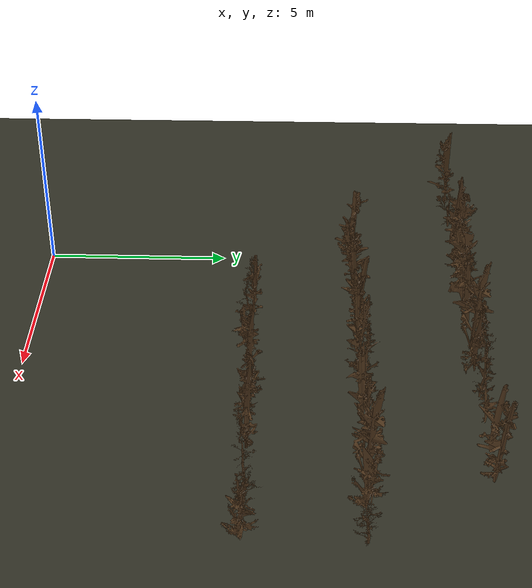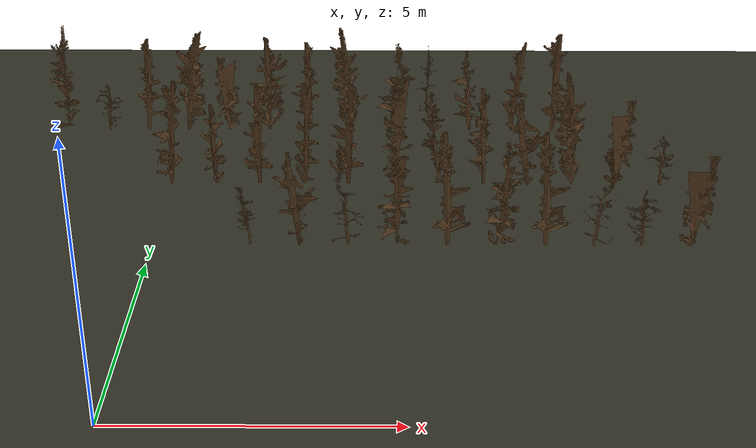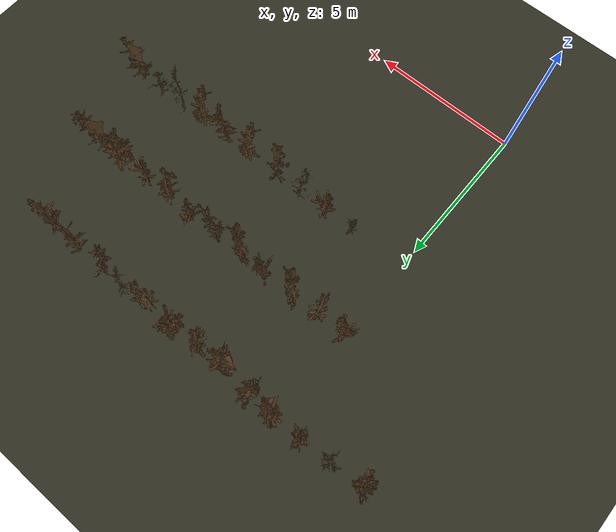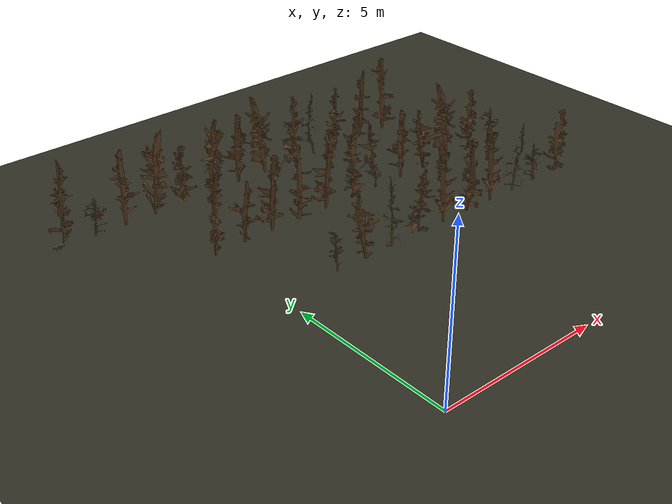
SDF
<sdf version="1.9">
 <world name="orchard_dormant_world">
  <model name="ground_plane">
   <static>true</static>
   <link name="link">
    <collision name="collision">
     <geometry><plane><normal>0 0 1</normal><size>500 500</size></plane></geometry>
    </collision>
    <visual name="visual">
     <geometry><plane><normal>0 0 1</normal><size>500 500</size></plane></geometry>
     <material><ambient>0.2 0.2 0.15 1</ambient><diffuse>0.2 0.2 0.15 1</diffuse></material>
    </visual>
   </link>
  </model>
  <model name="tree164">
   <static>true</static>
   <pose>9.000 11.700 -0.1 0 0 3.719</pose>
   <link name="link">
    <collision name="collision">
     <geometry>
      <mesh>
       <uri>file:///home/administrator/ros2/orchard_navigation_rl_ws/src/orchard_worlds/models/orchard_model/tree6_collision.stl</uri>
      </mesh>
     </geometry>
    </collision>
    <visual name="visual">
     <geometry>
      <mesh>
       <uri>file:///home/administrator/ros2/orchard_navigation_rl_ws/src/orchard_worlds/models/orchard_model/tree6.stl</uri>
      </mesh>
     </geometry>
     <material><ambient>0.3 0.2 0.1 1</ambient><diffuse>0.3 0.2 0.1 1</diffuse></material>
    </visual>
   </link>
  </model>
  <model name="tree165">
   <static>true</static>
   <pose>8.000 11.700 -0.1 0 0 2.765</pose>
   <link name="link">
    <collision name="collision">
     <geometry>
      <mesh>
       <uri>file:///home/administrator/ros2/orchard_navigation_rl_ws/src/orchard_worlds/models/orchard_model/tree13_collision.stl</uri>
      </mesh>
     </geometry>
    </collision>
    <visual name="visual">
     <geometry>
      <mesh>
       <uri>file:///home/administrator/ros2/orchard_navigation_rl_ws/src/orchard_worlds/models/orchard_model/tree13.stl</uri>
      </mesh>
     </geometry>
     <material><ambient>0.3 0.2 0.1 1</ambient><diffuse>0.3 0.2 0.1 1</diffuse></material>
    </visual>
   </link>
  </model>
  <model name="tree166">
   <static>true</static>
   <pose>7.000 11.700 -0.1 0 0 6.027</pose>
   <link name="link">
    <collision name="collision">
     <geometry>
      <mesh>
       <uri>file:///home/administrator/ros2/orchard_navigation_rl_ws/src/orchard_worlds/models/orchard_model/tree2_collision.stl</uri>
      </mesh>
     </geometry>
    </collision>
    <visual name="visual">
     <geometry>
      <mesh>
       <uri>file:///home/administrator/ros2/orchard_navigation_rl_ws/src/orchard_worlds/models/orchard_model/tree2.stl</uri>
      </mesh>
     </geometry>
     <material><ambient>0.3 0.2 0.1 1</ambient><diffuse>0.3 0.2 0.1 1</diffuse></material>
    </visual>
   </link>
  </model>
  <model name="tree167">
   <static>true</static>
   <pose>6.000 11.700 -0.1 0 0 0.107</pose>
   <link name="link">
    <collision name="collision">
     <geometry>
      <mesh>
       <uri>file:///home/administrator/ros2/orchard_navigation_rl_ws/src/orchard_worlds/models/orchard_model/tree16_collision.stl</uri>
      </mesh>
     </geometry>
    </collision>
    <visual name="visual">
     <geometry>
      <mesh>
       <uri>file:///home/administrator/ros2/orchard_navigation_rl_ws/src/orchard_worlds/models/orchard_model/tree16.stl</uri>
      </mesh>
     </geometry>
     <material><ambient>0.3 0.2 0.1 1</ambient><diffuse>0.3 0.2 0.1 1</diffuse></material>
    </visual>
   </link>
  </model>
  <model name="tree168">
   <static>true</static>
   <pose>5.000 11.700 -0.1 0 0 2.189</pose>
   <link name="link">
    <collision name="collision">
     <geometry>
      <mesh>
       <uri>file:///home/administrator/ros2/orchard_navigation_rl_ws/src/orchard_worlds/models/orchard_model/tree10_collision.stl</uri>
      </mesh>
     </geometry>
    </collision>
    <visual name="visual">
     <geometry>
      <mesh>
       <uri>file:///home/administrator/ros2/orchard_navigation_rl_ws/src/orchard_worlds/models/orchard_model/tree10.stl</uri>
      </mesh>
     </geometry>
     <material><ambient>0.3 0.2 0.1 1</ambient><diffuse>0.3 0.2 0.1 1</diffuse></material>
    </visual>
   </link>
  </model>
  <model name="tree169">
   <static>true</static>
   <pose>4.000 11.700 -0.1 0 0 4.984</pose>
   <link name="link">
    <collision name="collision">
     <geometry>
      <mesh>
       <uri>file:///home/administrator/ros2/orchard_navigation_rl_ws/src/orchard_worlds/models/orchard_model/tree7_collision.stl</uri>
      </mesh>
     </geometry>
    </collision>
    <visual name="visual">
     <geometry>
      <mesh>
       <uri>file:///home/administrator/ros2/orchard_navigation_rl_ws/src/orchard_worlds/models/orchard_model/tree7.stl</uri>
      </mesh>
     </geometry>
     <material><ambient>0.3 0.2 0.1 1</ambient><diffuse>0.3 0.2 0.1 1</diffuse></material>
    </visual>
   </link>
  </model>
  <model name="tree170">
   <static>true</static>
   <pose>3.000 11.700 -0.1 0 0 0.994</pose>
   <link name="link">
    <collision name="collision">
     <geometry>
      <mesh>
       <uri>file:///home/administrator/ros2/orchard_navigation_rl_ws/src/orchard_worlds/models/orchard_model/tree15_collision.stl</uri>
      </mesh>
     </geometry>
    </collision>
    <visual name="visual">
     <geometry>
      <mesh>
       <uri>file:///home/administrator/ros2/orchard_navigation_rl_ws/src/orchard_worlds/models/orchard_model/tree15.stl</uri>
      </mesh>
     </geometry>
     <material><ambient>0.3 0.2 0.1 1</ambient><diffuse>0.3 0.2 0.1 1</diffuse></material>
    </visual>
   </link>
  </model>
  <model name="tree171">
   <static>true</static>
   <pose>2.000 11.700 -0.1 0 0 1.065</pose>
   <link name="link">
    <collision name="collision">
     <geometry>
      <mesh>
       <uri>file:///home/administrator/ros2/orchard_navigation_rl_ws/src/orchard_worlds/models/orchard_model/tree7_collision.stl</uri>
      </mesh>
     </geometry>
    </collision>
    <visual name="visual">
     <geometry>
      <mesh>
       <uri>file:///home/administrator/ros2/orchard_navigation_rl_ws/src/orchard_worlds/models/orchard_model/tree7.stl</uri>
      </mesh>
     </geometry>
     <material><ambient>0.3 0.2 0.1 1</ambient><diffuse>0.3 0.2 0.1 1</diffuse></material>
    </visual>
   </link>
  </model>
  <model name="tree172">
   <static>true</static>
   <pose>1.000 11.700 -0.1 0 0 0.466</pose>
   <link name="link">
    <collision name="collision">
     <geometry>
      <mesh>
       <uri>file:///home/administrator/ros2/orchard_navigation_rl_ws/src/orchard_worlds/models/orchard_model/tree11_collision.stl</uri>
      </mesh>
     </geometry>
    </collision>
    <visual name="visual">
     <geometry>
      <mesh>
       <uri>file:///home/administrator/ros2/orchard_navigation_rl_ws/src/orchard_worlds/models/orchard_model/tree11.stl</uri>
      </mesh>
     </geometry>
     <material><ambient>0.3 0.2 0.1 1</ambient><diffuse>0.3 0.2 0.1 1</diffuse></material>
    </visual>
   </link>
  </model>
  <model name="tree173">
   <static>true</static>
   <pose>0.000 11.700 -0.1 0 0 2.783</pose>
   <link name="link">
    <collision name="collision">
     <geometry>
      <mesh>
       <uri>file:///home/administrator/ros2/orchard_navigation_rl_ws/src/orchard_worlds/models/orchard_model/tree7_collision.stl</uri>
      </mesh>
     </geometry>
    </collision>
    <visual name="visual">
     <geometry>
      <mesh>
       <uri>file:///home/administrator/ros2/orchard_navigation_rl_ws/src/orchard_worlds/models/orchard_model/tree7.stl</uri>
      </mesh>
     </geometry>
     <material><ambient>0.3 0.2 0.1 1</ambient><diffuse>0.3 0.2 0.1 1</diffuse></material>
    </visual>
   </link>
  </model>
  <model name="tree174">
   <static>true</static>
   <pose>-1.000 11.700 -0.1 0 0 4.013</pose>
   <link name="link">
    <collision name="collision">
     <geometry>
      <mesh>
       <uri>file:///home/administrator/ros2/orchard_navigation_rl_ws/src/orchard_worlds/models/orchard_model/tree15_collision.stl</uri>
      </mesh>
     </geometry>
    </collision>
    <visual name="visual">
     <geometry>
      <mesh>
       <uri>file:///home/administrator/ros2/orchard_navigation_rl_ws/src/orchard_worlds/models/orchard_model/tree15.stl</uri>
      </mesh>
     </geometry>
     <material><ambient>0.3 0.2 0.1 1</ambient><diffuse>0.3 0.2 0.1 1</diffuse></material>
    </visual>
   </link>
  </model>
  <model name="tree175">
   <static>true</static>
   <pose>-2.000 11.700 -0.1 0 0 3.729</pose>
   <link name="link">
    <collision name="collision">
     <geometry>
      <mesh>
       <uri>file:///home/administrator/ros2/orchard_navigation_rl_ws/src/orchard_worlds/models/orchard_model/tree14_collision.stl</uri>
      </mesh>
     </geometry>
    </collision>
    <visual name="visual">
     <geometry>
      <mesh>
       <uri>file:///home/administrator/ros2/orchard_navigation_rl_ws/src/orchard_worlds/models/orchard_model/tree14.stl</uri>
      </mesh>
     </geometry>
     <material><ambient>0.3 0.2 0.1 1</ambient><diffuse>0.3 0.2 0.1 1</diffuse></material>
    </visual>
   </link>
  </model>
  <model name="tree176">
   <static>true</static>
   <pose>-3.000 11.700 -0.1 0 0 0.740</pose>
   <link name="link">
    <collision name="collision">
     <geometry>
      <mesh>
       <uri>file:///home/administrator/ros2/orchard_navigation_rl_ws/src/orchard_worlds/models/orchard_model/tree3_collision.stl</uri>
      </mesh>
     </geometry>
    </collision>
    <visual name="visual">
     <geometry>
      <mesh>
       <uri>file:///home/administrator/ros2/orchard_navigation_rl_ws/src/orchard_worlds/models/orchard_model/tree3.stl</uri>
      </mesh>
     </geometry>
     <material><ambient>0.3 0.2 0.1 1</ambient><diffuse>0.3 0.2 0.1 1</diffuse></material>
    </visual>
   </link>
  </model>
  <model name="tree196">
   <static>true</static>
   <pose>11.000 8.700 -0.1 0 0 2.501</pose>
   <link name="link">
    <collision name="collision">
     <geometry>
      <mesh>
       <uri>file:///home/administrator/ros2/orchard_navigation_rl_ws/src/orchard_worlds/models/orchard_model/tree14_collision.stl</uri>
      </mesh>
     </geometry>
    </collision>
    <visual name="visual">
     <geometry>
      <mesh>
       <uri>file:///home/administrator/ros2/orchard_navigation_rl_ws/src/orchard_worlds/models/orchard_model/tree14.stl</uri>
      </mesh>
     </geometry>
     <material><ambient>0.3 0.2 0.1 1</ambient><diffuse>0.3 0.2 0.1 1</diffuse></material>
    </visual>
   </link>
  </model>
  <model name="tree197">
   <static>true</static>
   <pose>10.000 8.700 -0.1 0 0 3.217</pose>
   <link name="link">
    <collision name="collision">
     <geometry>
      <mesh>
       <uri>file:///home/administrator/ros2/orchard_navigation_rl_ws/src/orchard_worlds/models/orchard_model/tree11_collision.stl</uri>
      </mesh>
     </geometry>
    </collision>
    <visual name="visual">
     <geometry>
      <mesh>
       <uri>file:///home/administrator/ros2/orchard_navigation_rl_ws/src/orchard_worlds/models/orchard_model/tree11.stl</uri>
      </mesh>
     </geometry>
     <material><ambient>0.3 0.2 0.1 1</ambient><diffuse>0.3 0.2 0.1 1</diffuse></material>
    </visual>
   </link>
  </model>
  <model name="tree198">
   <static>true</static>
   <pose>9.000 8.700 -0.1 0 0 4.878</pose>
   <link name="link">
    <collision name="collision">
     <geometry>
      <mesh>
       <uri>file:///home/administrator/ros2/orchard_navigation_rl_ws/src/orchard_worlds/models/orchard_model/tree7_collision.stl</uri>
      </mesh>
     </geometry>
    </collision>
    <visual name="visual">
     <geometry>
      <mesh>
       <uri>file:///home/administrator/ros2/orchard_navigation_rl_ws/src/orchard_worlds/models/orchard_model/tree7.stl</uri>
      </mesh>
     </geometry>
     <material><ambient>0.3 0.2 0.1 1</ambient><diffuse>0.3 0.2 0.1 1</diffuse></material>
    </visual>
   </link>
  </model>
  <model name="tree199">
   <static>true</static>
   <pose>8.000 8.700 -0.1 0 0 5.051</pose>
   <link name="link">
    <collision name="collision">
     <geometry>
      <mesh>
       <uri>file:///home/administrator/ros2/orchard_navigation_rl_ws/src/orchard_worlds/models/orchard_model/tree8_collision.stl</uri>
      </mesh>
     </geometry>
    </collision>
    <visual name="visual">
     <geometry>
      <mesh>
       <uri>file:///home/administrator/ros2/orchard_navigation_rl_ws/src/orchard_worlds/models/orchard_model/tree8.stl</uri>
      </mesh>
     </geometry>
     <material><ambient>0.3 0.2 0.1 1</ambient><diffuse>0.3 0.2 0.1 1</diffuse></material>
    </visual>
   </link>
  </model>
  <model name="tree200">
   <static>true</static>
   <pose>7.000 8.700 -0.1 0 0 0.449</pose>
   <link name="link">
    <collision name="collision">
     <geometry>
      <mesh>
       <uri>file:///home/administrator/ros2/orchard_navigation_rl_ws/src/orchard_worlds/models/orchard_model/tree15_collision.stl</uri>
      </mesh>
     </geometry>
    </collision>
    <visual name="visual">
     <geometry>
      <mesh>
       <uri>file:///home/administrator/ros2/orchard_navigation_rl_ws/src/orchard_worlds/models/orchard_model/tree15.stl</uri>
      </mesh>
     </geometry>
     <material><ambient>0.3 0.2 0.1 1</ambient><diffuse>0.3 0.2 0.1 1</diffuse></material>
    </visual>
   </link>
  </model>
  <model name="tree201">
   <static>true</static>
   <pose>6.000 8.700 -0.1 0 0 4.723</pose>
   <link name="link">
    <collision name="collision">
     <geometry>
      <mesh>
       <uri>file:///home/administrator/ros2/orchard_navigation_rl_ws/src/orchard_worlds/models/orchard_model/tree2_collision.stl</uri>
      </mesh>
     </geometry>
    </collision>
    <visual name="visual">
     <geometry>
      <mesh>
       <uri>file:///home/administrator/ros2/orchard_navigation_rl_ws/src/orchard_worlds/models/orchard_model/tree2.stl</uri>
      </mesh>
     </geometry>
     <material><ambient>0.3 0.2 0.1 1</ambient><diffuse>0.3 0.2 0.1 1</diffuse></material>
    </visual>
   </link>
  </model>
  <model name="tree202">
   <static>true</static>
   <pose>5.000 8.700 -0.1 0 0 2.519</pose>
   <link name="link">
    <collision name="collision">
     <geometry>
      <mesh>
       <uri>file:///home/administrator/ros2/orchard_navigation_rl_ws/src/orchard_worlds/models/orchard_model/tree5_collision.stl</uri>
      </mesh>
     </geometry>
    </collision>
    <visual name="visual">
     <geometry>
      <mesh>
       <uri>file:///home/administrator/ros2/orchard_navigation_rl_ws/src/orchard_worlds/models/orchard_model/tree5.stl</uri>
      </mesh>
     </geometry>
     <material><ambient>0.3 0.2 0.1 1</ambient><diffuse>0.3 0.2 0.1 1</diffuse></material>
    </visual>
   </link>
  </model>
  <model name="tree203">
   <static>true</static>
   <pose>4.000 8.700 -0.1 0 0 1.296</pose>
   <link name="link">
    <collision name="collision">
     <geometry>
      <mesh>
       <uri>file:///home/administrator/ros2/orchard_navigation_rl_ws/src/orchard_worlds/models/orchard_model/tree6_collision.stl</uri>
      </mesh>
     </geometry>
    </collision>
    <visual name="visual">
     <geometry>
      <mesh>
       <uri>file:///home/administrator/ros2/orchard_navigation_rl_ws/src/orchard_worlds/models/orchard_model/tree6.stl</uri>
      </mesh>
     </geometry>
     <material><ambient>0.3 0.2 0.1 1</ambient><diffuse>0.3 0.2 0.1 1</diffuse></material>
    </visual>
   </link>
  </model>
  <model name="tree204">
   <static>true</static>
   <pose>3.000 8.700 -0.1 0 0 3.465</pose>
   <link name="link">
    <collision name="collision">
     <geometry>
      <mesh>
       <uri>file:///home/administrator/ros2/orchard_navigation_rl_ws/src/orchard_worlds/models/orchard_model/tree13_collision.stl</uri>
      </mesh>
     </geometry>
    </collision>
    <visual name="visual">
     <geometry>
      <mesh>
       <uri>file:///home/administrator/ros2/orchard_navigation_rl_ws/src/orchard_worlds/models/orchard_model/tree13.stl</uri>
      </mesh>
     </geometry>
     <material><ambient>0.3 0.2 0.1 1</ambient><diffuse>0.3 0.2 0.1 1</diffuse></material>
    </visual>
   </link>
  </model>
  <model name="tree205">
   <static>true</static>
   <pose>2.000 8.700 -0.1 0 0 0.932</pose>
   <link name="link">
    <collision name="collision">
     <geometry>
      <mesh>
       <uri>file:///home/administrator/ros2/orchard_navigation_rl_ws/src/orchard_worlds/models/orchard_model/tree6_collision.stl</uri>
      </mesh>
     </geometry>
    </collision>
    <visual name="visual">
     <geometry>
      <mesh>
       <uri>file:///home/administrator/ros2/orchard_navigation_rl_ws/src/orchard_worlds/models/orchard_model/tree6.stl</uri>
      </mesh>
     </geometry>
     <material><ambient>0.3 0.2 0.1 1</ambient><diffuse>0.3 0.2 0.1 1</diffuse></material>
    </visual>
   </link>
  </model>
  <model name="tree206">
   <static>true</static>
   <pose>1.000 8.700 -0.1 0 0 0.542</pose>
   <link name="link">
    <collision name="collision">
     <geometry>
      <mesh>
       <uri>file:///home/administrator/ros2/orchard_navigation_rl_ws/src/orchard_worlds/models/orchard_model/tree8_collision.stl</uri>
      </mesh>
     </geometry>
    </collision>
    <visual name="visual">
     <geometry>
      <mesh>
       <uri>file:///home/administrator/ros2/orchard_navigation_rl_ws/src/orchard_worlds/models/orchard_model/tree8.stl</uri>
      </mesh>
     </geometry>
     <material><ambient>0.3 0.2 0.1 1</ambient><diffuse>0.3 0.2 0.1 1</diffuse></material>
    </visual>
   </link>
  </model>
  <model name="tree207">
   <static>true</static>
   <pose>0.000 8.700 -0.1 0 0 2.624</pose>
   <link name="link">
    <collision name="collision">
     <geometry>
      <mesh>
       <uri>file:///home/administrator/ros2/orchard_navigation_rl_ws/src/orchard_worlds/models/orchard_model/tree6_collision.stl</uri>
      </mesh>
     </geometry>
    </collision>
    <visual name="visual">
     <geometry>
      <mesh>
       <uri>file:///home/administrator/ros2/orchard_navigation_rl_ws/src/orchard_worlds/models/orchard_model/tree6.stl</uri>
      </mesh>
     </geometry>
     <material><ambient>0.3 0.2 0.1 1</ambient><diffuse>0.3 0.2 0.1 1</diffuse></material>
    </visual>
   </link>
  </model>
  <model name="tree227">
   <static>true</static>
   <pose>11.000 5.900 -0.1 0 0 2.930</pose>
   <link name="link">
    <collision name="collision">
     <geometry>
      <mesh>
       <uri>file:///home/administrator/ros2/orchard_navigation_rl_ws/src/orchard_worlds/models/orchard_model/tree11_collision.stl</uri>
      </mesh>
     </geometry>
    </collision>
    <visual name="visual">
     <geometry>
      <mesh>
       <uri>file:///home/administrator/ros2/orchard_navigation_rl_ws/src/orchard_worlds/models/orchard_model/tree11.stl</uri>
      </mesh>
     </geometry>
     <material><ambient>0.3 0.2 0.1 1</ambient><diffuse>0.3 0.2 0.1 1</diffuse></material>
    </visual>
   </link>
  </model>
  <model name="tree228">
   <static>true</static>
   <pose>10.000 5.900 -0.1 0 0 0.348</pose>
   <link name="link">
    <collision name="collision">
     <geometry>
      <mesh>
       <uri>file:///home/administrator/ros2/orchard_navigation_rl_ws/src/orchard_worlds/models/orchard_model/tree14_collision.stl</uri>
      </mesh>
     </geometry>
    </collision>
    <visual name="visual">
     <geometry>
      <mesh>
       <uri>file:///home/administrator/ros2/orchard_navigation_rl_ws/src/orchard_worlds/models/orchard_model/tree14.stl</uri>
      </mesh>
     </geometry>
     <material><ambient>0.3 0.2 0.1 1</ambient><diffuse>0.3 0.2 0.1 1</diffuse></material>
    </visual>
   </link>
  </model>
  <model name="tree229">
   <static>true</static>
   <pose>9.000 5.900 -0.1 0 0 1.657</pose>
   <link name="link">
    <collision name="collision">
     <geometry>
      <mesh>
       <uri>file:///home/administrator/ros2/orchard_navigation_rl_ws/src/orchard_worlds/models/orchard_model/tree9_collision.stl</uri>
      </mesh>
     </geometry>
    </collision>
    <visual name="visual">
     <geometry>
      <mesh>
       <uri>file:///home/administrator/ros2/orchard_navigation_rl_ws/src/orchard_worlds/models/orchard_model/tree9.stl</uri>
      </mesh>
     </geometry>
     <material><ambient>0.3 0.2 0.1 1</ambient><diffuse>0.3 0.2 0.1 1</diffuse></material>
    </visual>
   </link>
  </model>
  <model name="tree230">
   <static>true</static>
   <pose>8.000 5.900 -0.1 0 0 4.918</pose>
   <link name="link">
    <collision name="collision">
     <geometry>
      <mesh>
       <uri>file:///home/administrator/ros2/orchard_navigation_rl_ws/src/orchard_worlds/models/orchard_model/tree6_collision.stl</uri>
      </mesh>
     </geometry>
    </collision>
    <visual name="visual">
     <geometry>
      <mesh>
       <uri>file:///home/administrator/ros2/orchard_navigation_rl_ws/src/orchard_worlds/models/orchard_model/tree6.stl</uri>
      </mesh>
     </geometry>
     <material><ambient>0.3 0.2 0.1 1</ambient><diffuse>0.3 0.2 0.1 1</diffuse></material>
    </visual>
   </link>
  </model>
  <model name="tree231">
   <static>true</static>
   <pose>7.000 5.900 -0.1 0 0 2.720</pose>
   <link name="link">
    <collision name="collision">
     <geometry>
      <mesh>
       <uri>file:///home/administrator/ros2/orchard_navigation_rl_ws/src/orchard_worlds/models/orchard_model/tree10_collision.stl</uri>
      </mesh>
     </geometry>
    </collision>
    <visual name="visual">
     <geometry>
      <mesh>
       <uri>file:///home/administrator/ros2/orchard_navigation_rl_ws/src/orchard_worlds/models/orchard_model/tree10.stl</uri>
      </mesh>
     </geometry>
     <material><ambient>0.3 0.2 0.1 1</ambient><diffuse>0.3 0.2 0.1 1</diffuse></material>
    </visual>
   </link>
  </model>
  <model name="tree232">
   <static>true</static>
   <pose>6.000 5.900 -0.1 0 0 4.867</pose>
   <link name="link">
    <collision name="collision">
     <geometry>
      <mesh>
       <uri>file:///home/administrator/ros2/orchard_navigation_rl_ws/src/orchard_worlds/models/orchard_model/tree6_collision.stl</uri>
      </mesh>
     </geometry>
    </collision>
    <visual name="visual">
     <geometry>
      <mesh>
       <uri>file:///home/administrator/ros2/orchard_navigation_rl_ws/src/orchard_worlds/models/orchard_model/tree6.stl</uri>
      </mesh>
     </geometry>
     <material><ambient>0.3 0.2 0.1 1</ambient><diffuse>0.3 0.2 0.1 1</diffuse></material>
    </visual>
   </link>
  </model>
  <model name="tree233">
   <static>true</static>
   <pose>5.000 5.900 -0.1 0 0 0.291</pose>
   <link name="link">
    <collision name="collision">
     <geometry>
      <mesh>
       <uri>file:///home/administrator/ros2/orchard_navigation_rl_ws/src/orchard_worlds/models/orchard_model/tree1_collision.stl</uri>
      </mesh>
     </geometry>
    </collision>
    <visual name="visual">
     <geometry>
      <mesh>
       <uri>file:///home/administrator/ros2/orchard_navigation_rl_ws/src/orchard_worlds/models/orchard_model/tree1.stl</uri>
      </mesh>
     </geometry>
     <material><ambient>0.3 0.2 0.1 1</ambient><diffuse>0.3 0.2 0.1 1</diffuse></material>
    </visual>
   </link>
  </model>
  <model name="tree234">
   <static>true</static>
   <pose>4.000 5.900 -0.1 0 0 5.608</pose>
   <link name="link">
    <collision name="collision">
     <geometry>
      <mesh>
       <uri>file:///home/administrator/ros2/orchard_navigation_rl_ws/src/orchard_worlds/models/orchard_model/tree9_collision.stl</uri>
      </mesh>
     </geometry>
    </collision>
    <visual name="visual">
     <geometry>
      <mesh>
       <uri>file:///home/administrator/ros2/orchard_navigation_rl_ws/src/orchard_worlds/models/orchard_model/tree9.stl</uri>
      </mesh>
     </geometry>
     <material><ambient>0.3 0.2 0.1 1</ambient><diffuse>0.3 0.2 0.1 1</diffuse></material>
    </visual>
   </link>
  </model>
  <model name="tree235">
   <static>true</static>
   <pose>3.000 5.900 -0.1 0 0 4.909</pose>
   <link name="link">
    <collision name="collision">
     <geometry>
      <mesh>
       <uri>file:///home/administrator/ros2/orchard_navigation_rl_ws/src/orchard_worlds/models/orchard_model/tree8_collision.stl</uri>
      </mesh>
     </geometry>
    </collision>
    <visual name="visual">
     <geometry>
      <mesh>
       <uri>file:///home/administrator/ros2/orchard_navigation_rl_ws/src/orchard_worlds/models/orchard_model/tree8.stl</uri>
      </mesh>
     </geometry>
     <material><ambient>0.3 0.2 0.1 1</ambient><diffuse>0.3 0.2 0.1 1</diffuse></material>
    </visual>
   </link>
  </model>
  <model name="tree236">
   <static>true</static>
   <pose>2.000 5.900 -0.1 0 0 6.087</pose>
   <link name="link">
    <collision name="collision">
     <geometry>
      <mesh>
       <uri>file:///home/administrator/ros2/orchard_navigation_rl_ws/src/orchard_worlds/models/orchard_model/tree4_collision.stl</uri>
      </mesh>
     </geometry>
    </collision>
    <visual name="visual">
     <geometry>
      <mesh>
       <uri>file:///home/administrator/ros2/orchard_navigation_rl_ws/src/orchard_worlds/models/orchard_model/tree4.stl</uri>
      </mesh>
     </geometry>
     <material><ambient>0.3 0.2 0.1 1</ambient><diffuse>0.3 0.2 0.1 1</diffuse></material>
    </visual>
   </link>
  </model>
 </world>
</sdf>
